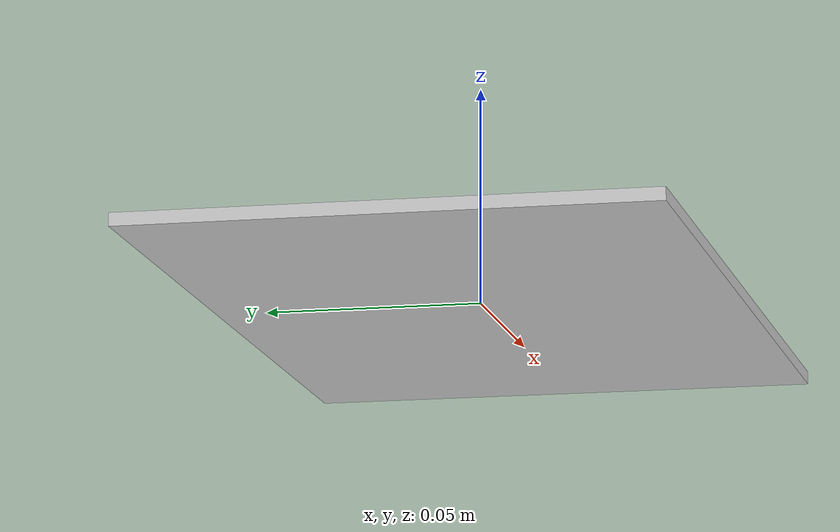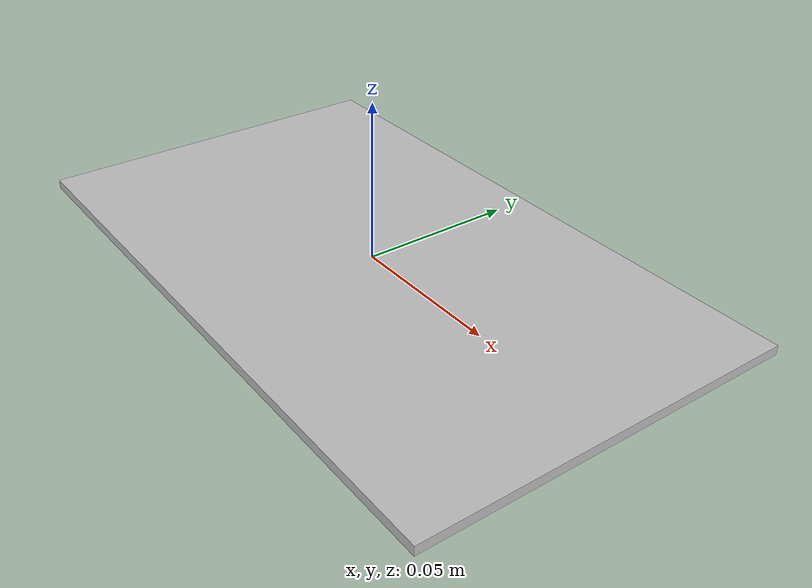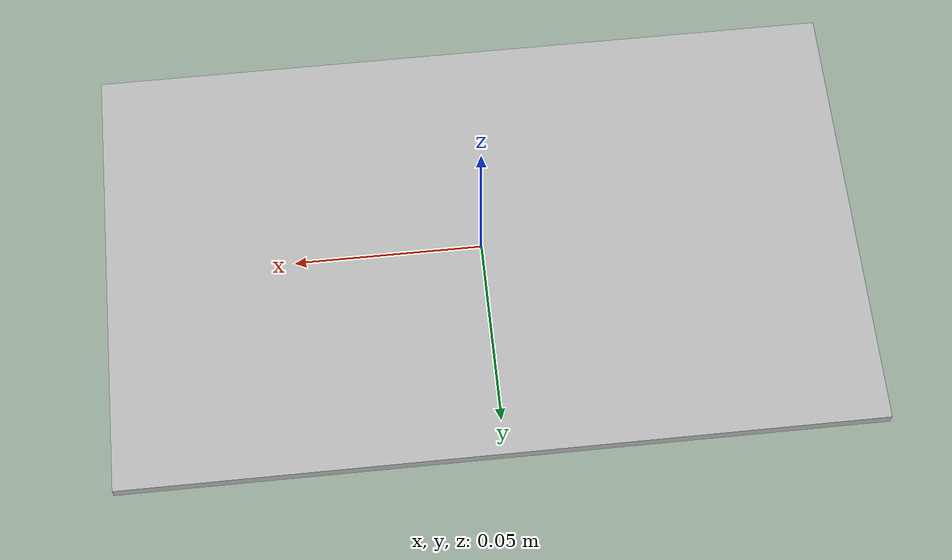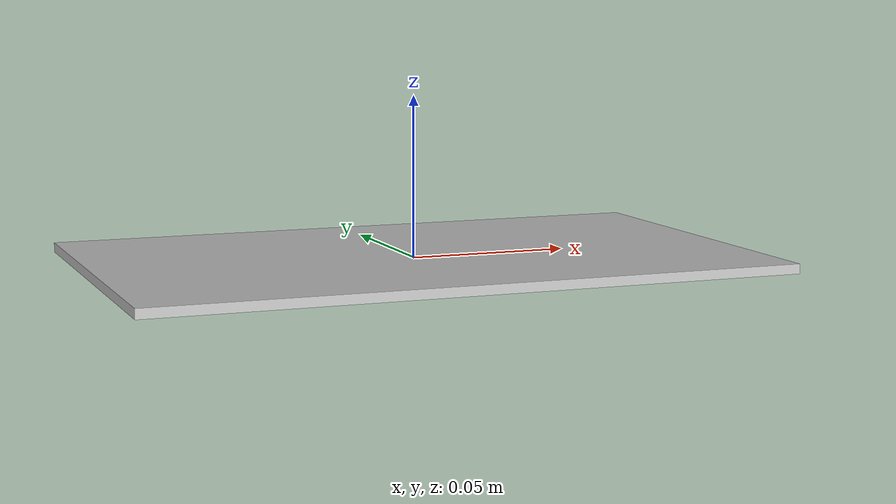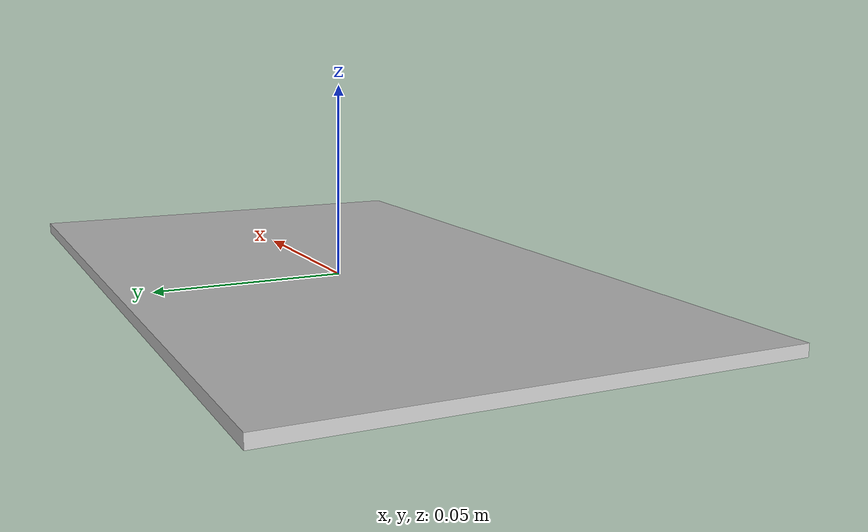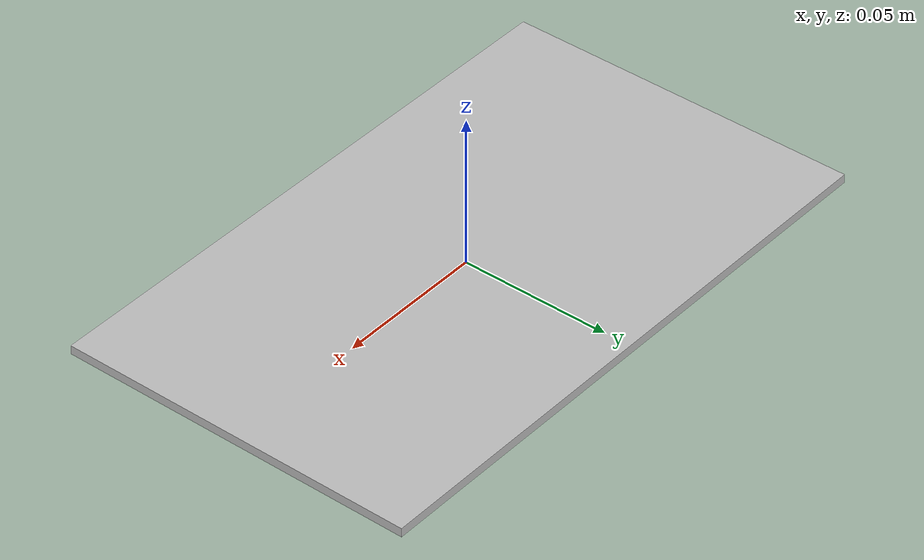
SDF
<?xml version="1.0"?>
<sdf version="1.4">
  <model name="charuco_200x120_3x6_30_22_DICT_7X7">
    <static>1</static>
    <link name="charuco">
      <pose>0 0 0 0 0 0</pose>
      <visual name="visual">
        <geometry>
          <mesh>
            <uri>model://charuco_200x120_3x6_30_22_DICT_7X7/model.dae</uri>
          </mesh>
        </geometry>
      </visual>
      <collision name="collision">
        <geometry>
          <mesh>
            <uri>model://charuco_200x120_3x6_30_22_DICT_7X7/model.dae</uri>
          </mesh>
        </geometry>
      </collision>
    </link>
  </model>
</sdf>
